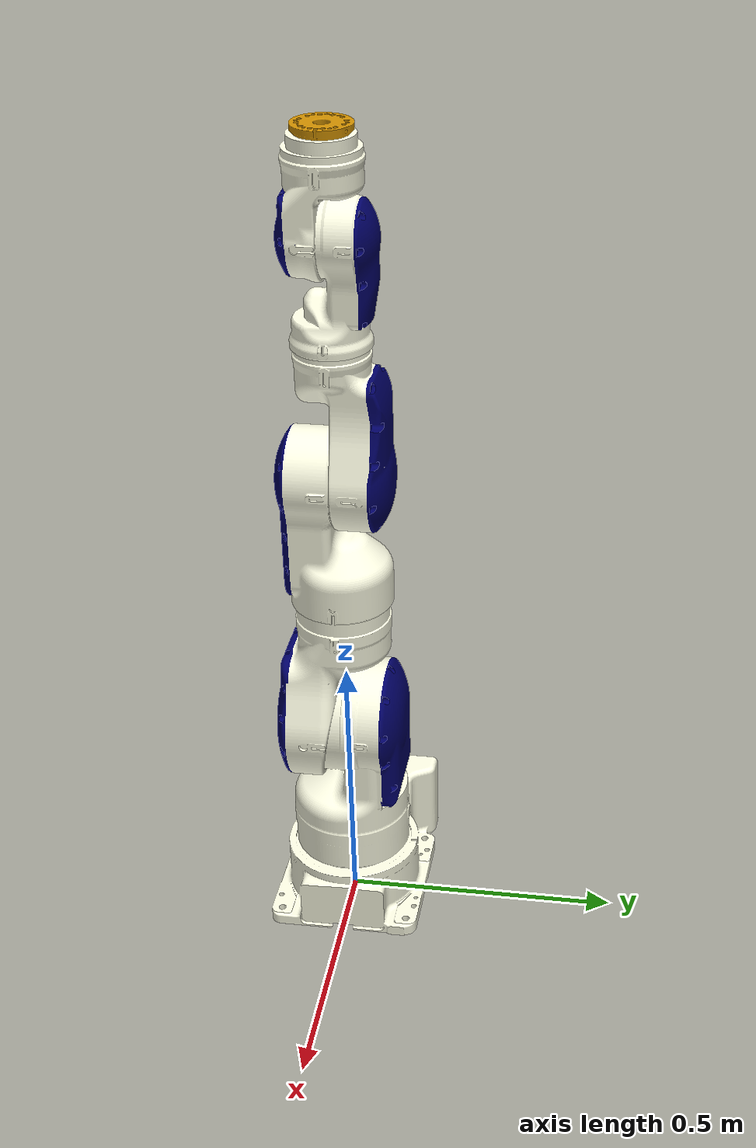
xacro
<?xml version="1.0"?>
<robot name="sia20" xmlns:xacro="http://ros.org/wiki/xacro">
  <!-- File Include -->
  <xacro:include filename="$(find motoman_description)/robots/sia20/sia20_basic.urdf.xacro" />

  <link name="world"/>
  <joint name="world_to_base_link" type="fixed">
    <parent link="world"/>
    <child link="base_link"/>
  </joint>

</robot>

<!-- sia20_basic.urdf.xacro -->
<robot name="sia20" xmlns:xacro="http://ros.org/wiki/xacro">
  <!-- File Include -->
  <xacro:include filename="$(find motoman_description)/urdf/common.xacro" />
  <xacro:include filename="$(find motoman_description)/urdf/materials.xacro"/>
  <xacro:include filename="$(find motoman_description)/urdf/sia20/base_link/base_link.urdf.xacro" />
  <xacro:include filename="$(find motoman_description)/urdf/sia20/link/link.urdf.xacro" />
  <xacro:include filename="$(find motoman_description)/robots/sia20/property.xacro"/>

  <!-- Add Link & Joint -->
  <!-- base_link -->
  <xacro:base_link_v0/>

  <!-- Link S -->
  <xacro:link_v1 suffix="s" parent="base_link"
                 mass="20" height="0.22" width="0.22" depth="0.407">
    <origin xyz="0 0 0.112"/>
    <limit effort="100.0" lower="${joint_s_lower_limit}"
           upper="${joint_s_upper_limit}" velocity="${joint_s_velocity_limit}"/>
    <origin xyz="0 0 ${0.407/2}"/>
  </xacro:link_v1>

  <!-- Link L -->
  <xacro:link_v1 suffix="l" parent="link_s"
                 mass="20" height="0.24" width="0.388" depth="0.206">
    <origin xyz="0 0 0.298" rpy="${M_PI/2} 0 0"/>
    <limit effort="100.0" lower="${joint_l_lower_limit}"
           upper="${joint_l_upper_limit}" velocity="${joint_l_velocity_limit}"/>
    <origin xyz="0 ${0.388/4} 0"/>
  </xacro:link_v1>

  <!-- Link E -->
  <xacro:link_v1 suffix="e" parent="link_l"
                 mass="15" height="0.18" width="0.195" depth="0.327">
    <origin xyz="0 0.266 0" rpy="${-M_PI/2} 0 0"/>
    <limit effort="100.0" lower="${joint_e_lower_limit}"
           upper="${joint_e_upper_limit}" velocity="${joint_e_velocity_limit}"/>
    <origin xyz="0 0 ${0.327/2}"/>
  </xacro:link_v1>

  <!-- Link U -->
  <xacro:link_v1 suffix="u" parent="link_e"
                 mass="15" height="0.18" width="0.355" depth="0.16">
    <origin xyz="0 0 0.224" rpy="${M_PI/2} 0 0"/>
    <limit effort="100.0" lower="${joint_u_lower_limit}"
           upper="${joint_u_upper_limit}" velocity="${joint_u_velocity_limit}"/>
    <origin xyz="0 ${0.355/4} 0"/>
  </xacro:link_v1>

  <!-- Link R -->
  <xacro:link_v1 suffix="r" parent="link_u"
                 mass="7.5" height="0.14" width="0.153" depth="0.247">
    <origin xyz="0 0.264 0" rpy="${-M_PI/2} 0 0"/>
    <limit effort="100.0" lower="${joint_r_lower_limit}"
           upper="${joint_r_upper_limit}" velocity="${joint_r_velocity_limit}"/>
    <origin xyz="0 0 ${0.247/2}"/>
  </xacro:link_v1>

  <!-- Link B -->
  <xacro:link_v1 suffix="b" parent="link_r"
                 mass="7.5" height="0.14" width="0.237" depth="0.146">
    <origin xyz="0 0 0.156" rpy="${M_PI/2} 0 0"/>
    <limit effort="100.0" lower="${joint_b_lower_limit}"
           upper="${joint_b_upper_limit}" velocity="${joint_b_velocity_limit}"/>
    <origin xyz="0 ${0.237/4} 0"/>
  </xacro:link_v1>

  <!-- Link T -->
  <xacro:link_v1 suffix="t" parent="link_b"
                 mass="5" height="0.0998" width="0.0998" depth="0.0158">
    <origin xyz="0 0.167 0" rpy="${-M_PI/2} 0 0"/>
    <limit effort="100.0" lower="${joint_t_lower_limit}"
           upper="${joint_t_upper_limit}" velocity="${joint_t_velocity_limit}"/>
    <origin xyz="0 0 ${0.0158/2}"/>
  </xacro:link_v1>

  <!-- Tool Link -->
  <link name="tool0"/>
  <joint name="joint_tool0" type="fixed">
    <origin xyz="0 0 0.01286" rpy="0 ${-M_PI/2} 0"/>
    <parent link="link_t"/>
    <child link="tool0"/>
  </joint>

  <!-- Add Gazebo plugin -->
  <gazebo>
    <plugin name="gazebo_ros_control" filename="libgazebo_ros_control.so">
      <robotSimType>gazebo_ros_control/DefaultRobotHWSim</robotSimType>
    </plugin>
  </gazebo>

</robot>

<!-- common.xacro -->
<robot xmlns:xacro="http://ros.org/wiki/xacro">
  <property name="M_PI" value="3.14159274"/>

  <xacro:macro name="cylinder_inertial" params="mass radius length *origin">
    <insert_block name="origin"/>
	<mass value="${mass}"/>
	<inertia ixx="${((radius*radius)/4 + (length*length)/12)*mass}" ixy="0" ixz="0"
			 iyy="${((radius*radius)/4 + (length*length)/12)*mass}" iyz="0"
			 izz="${(mass*radius*radius)/2}" />
  </xacro:macro>

  <xacro:macro name="box_inertial" params="mass height width depth *origin">
    <insert_block name="origin"/>
	<mass value="${mass}"/>
	<inertia ixx="${(mass*(width*width+depth*depth))/12}" ixy="0" ixz="0"
			 iyy="${(mass*(height*height+depth*depth))/12}" iyz="0"
			 izz="${(mass*(height*height+width*width))/12}" />
  </xacro:macro>

</robot>

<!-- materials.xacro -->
<robot>

  <material name="black">
    <color rgba="0.0 0.0 0.0 1.0"/>
  </material>

  <material name="blue">
    <color rgba="0.0 0.0 0.8 1.0"/>
  </material>

  <material name="green">
    <color rgba="0.0 0.8 0.0 1.0"/>
  </material>

  <material name="grey">
    <color rgba="0.2 0.2 0.2 1.0"/>
  </material>

  <material name="orange">
    <color rgba="${255/255} ${108/255} ${10/255} 1.0"/>
  </material>

  <material name="brown">
    <color rgba="${222/255} ${207/255} ${195/255} 1.0"/>
  </material>

  <material name="red">
    <color rgba="0.8 0.0 0.0 1.0"/>
  </material>

  <material name="white">
    <color rgba="1.0 1.0 1.0 1.0"/>
  </material>

  <material name="yaskawa_blue">
    <color rgba="0.12941 0.14902 0.74902 1" />
  </material>

</robot>

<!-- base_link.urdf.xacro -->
<robot xmlns:xacro="http://ros.org/wiki/xacro">

  <xacro:include filename="$(find motoman_description)/urdf/sia20/base_link/base_link.gazebo.xacro"/>

  <xacro:macro name="base_link_v0">
    <link name="base_link">
      <visual>
        <origin rpy="${M_PI/2} 0 0"/>
        <geometry>
          <mesh filename="package://motoman_description/meshes/sia20/base_link/visual.dae"/>
        </geometry>
      </visual>
      <collision>
        <origin rpy="${M_PI/2} 0 0"/>
        <geometry>
          <mesh filename="package://motoman_description/meshes/sia20/base_link/collision.stl"/>
        </geometry>
      </collision>
      <inertial>
        <xacro:box_inertial mass="30" height="0.34" width="0.175" depth="0.28">
          <origin xyz="0 0 ${0.28/2}" rpy="${M_PI/2} 0 0"/>
        </xacro:box_inertial>
      </inertial>
    </link>

    <xacro:base_link_gazebo_v0/>

  </xacro:macro>

</robot>

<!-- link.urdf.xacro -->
<robot xmlns:xacro="http://ros.org/wiki/xacro">

  <xacro:include filename="$(find motoman_description)/urdf/sia20/link/link.gazebo.xacro"/>
  <xacro:include filename="$(find motoman_description)/urdf/sia20/link/link.transmission.xacro"/>

  <xacro:macro name="link_v1" params="suffix
                                      parent
                                      mass
                                      height
                                      width
                                      depth
                                      *joint_origin
                                      *joint_limit
                                      *inertial_origin">
    <link name="link_${suffix}">
      <visual>
        <geometry>
          <mesh filename="package://motoman_description/meshes/sia20/link_${suffix}/visual.dae"/>
        </geometry>
      </visual>
      <collision>
        <geometry>
          <mesh filename="package://motoman_description/meshes/sia20/link_${suffix}/collision.stl"/>
        </geometry>
      </collision>
      <inertial>
        <xacro:box_inertial mass="${mass}" height="${height}" width="${width}" depth="${depth}">
          <insert_block name="inertial_origin"/>
        </xacro:box_inertial>
      </inertial>
    </link>

    <joint name="joint_${suffix}" type="revolute">
      <insert_block name="joint_origin"/>
      <parent link="${parent}"/>
      <child link="link_${suffix}"/>
      <axis xyz="0 0 1"/>
      <dynamics damping="0.7" friction="0.7"/>
      <insert_block name="joint_limit"/>
    </joint>

    <xacro:link_gazebo_v1 suffix="${suffix}"/>

    <xacro:link_trans_v0 suffix="${suffix}" reduction="50"/>

  </xacro:macro>
</robot>

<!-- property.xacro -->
<robot xmlns:xacro="http://ros.org/wiki/xacro">
  <xacro:include filename="$(find motoman_description)/urdf/common.xacro" />
  <!-- Hard ware limits -->
  <!-- Range limits -->
  <xacro:property name="joint_s_upper_limit" value="${180*M_PI/180}"/>
  <xacro:property name="joint_s_lower_limit" value="-${joint_s_upper_limit}"/>
  <xacro:property name="joint_l_upper_limit" value="${110*M_PI/180}"/>
  <xacro:property name="joint_l_lower_limit" value="-${joint_l_upper_limit}"/>
  <xacro:property name="joint_e_upper_limit" value="${170*M_PI/180}"/>
  <xacro:property name="joint_e_lower_limit" value="-${joint_e_upper_limit}"/>
  <xacro:property name="joint_u_upper_limit" value="${130*M_PI/180}"/>
  <xacro:property name="joint_u_lower_limit" value="-${joint_u_upper_limit}"/>
  <xacro:property name="joint_r_upper_limit" value="${180*M_PI/180}"/>
  <xacro:property name="joint_r_lower_limit" value="-${joint_r_upper_limit}"/>
  <xacro:property name="joint_b_upper_limit" value="${110*M_PI/180}"/>
  <xacro:property name="joint_b_lower_limit" value="-${joint_b_upper_limit}"/>
  <xacro:property name="joint_t_upper_limit" value="${180*M_PI/180}"/>
  <xacro:property name="joint_t_lower_limit" value="-${joint_t_upper_limit}"/>

  <!-- Velocity limits -->
  <xacro:property name="joint_s_velocity_limit" value="${130*M_PI/180}"/>
  <xacro:property name="joint_l_velocity_limit" value="${130*M_PI/180}"/>
  <xacro:property name="joint_e_velocity_limit" value="${170*M_PI/180}"/>
  <xacro:property name="joint_u_velocity_limit" value="${170*M_PI/180}"/>
  <xacro:property name="joint_r_velocity_limit" value="${200*M_PI/180}"/>
  <xacro:property name="joint_b_velocity_limit" value="${200*M_PI/180}"/>
  <xacro:property name="joint_t_velocity_limit" value="${400*M_PI/180}"/>
</robot>
